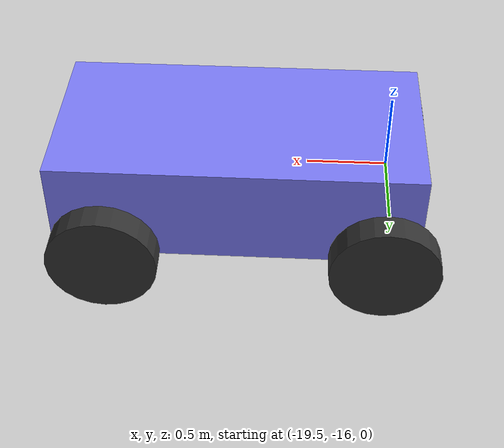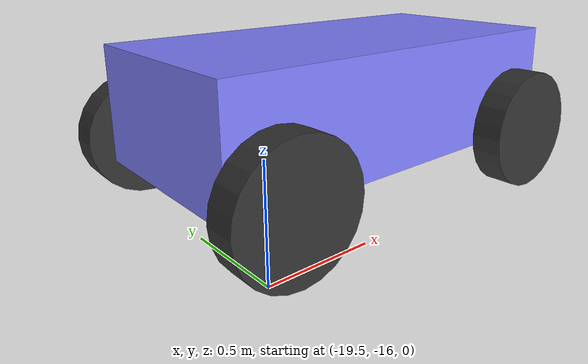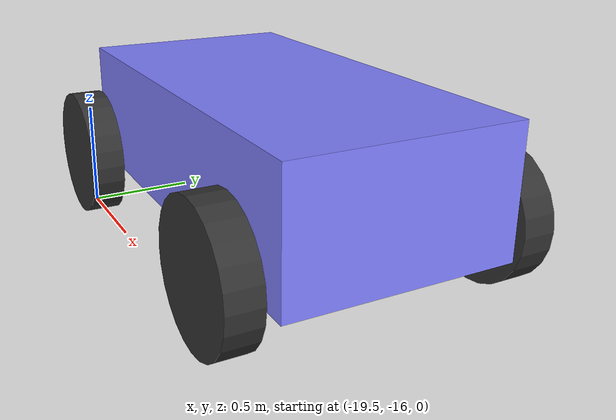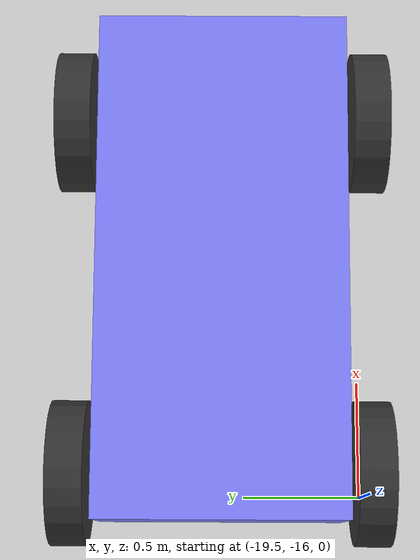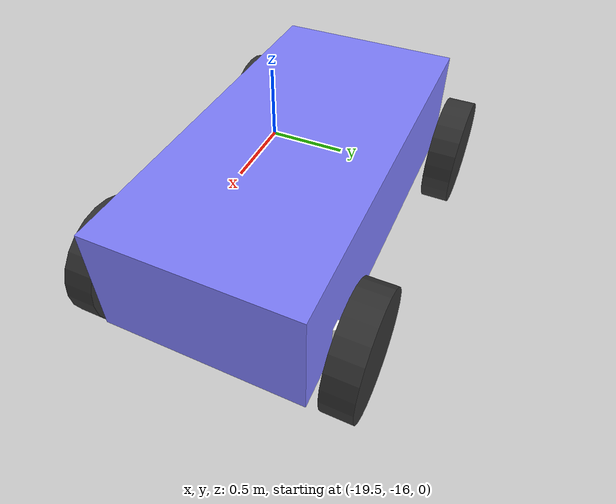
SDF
<sdf version="1.10">
 <world name="ackermann_steering">
  <model name="vehicle_blue">
   <pose>-18.453155517578125 -15.402700424194336 0.32499998807907104 0 0 0</pose>
   <link name="chassis">
    <pose>-0.15142700000000001 0 0.17499999999999999 0 0 0</pose>
    <inertial>
     <mass>1.14395</mass>
     <inertia>
      <ixx>0.126164</ixx>
      <ixy>0</ixy>
      <ixz>0</ixz>
      <iyy>0.41651899999999997</iyy>
      <iyz>0</iyz>
      <izz>0.481014</izz>
     </inertia>
    </inertial>
    <visual name="visual">
     <geometry><box><size>2.0114200000000002 1 0.56872599999999995</size></box></geometry>
     <material><ambient>0.5 0.5 1 1</ambient><diffuse>0.5 0.5 1 1</diffuse><specular>0 0 1 1</specular></material>
    </visual>
    <collision name="collision">
     <geometry><box><size>2.0114200000000002 1 0.56872599999999995</size></box></geometry>
    </collision>
    <sensor name="imu_sensor" type="imu">
     <topic>imu</topic>
     <update_rate>1</update_rate>
     <enable_metrics>false</enable_metrics>
     <imu>
      <orientation_reference_frame>
       <localization>CUSTOM</localization>
       <custom_rpy>0 0 0</custom_rpy>
       <grav_dir_x>1 0 0</grav_dir_x>
      </orientation_reference_frame>
      <angular_velocity>
       <x>
        <noise type="none">
         <mean>0</mean>
         <stddev>0</stddev>
         <bias_mean>0</bias_mean>
         <bias_stddev>0</bias_stddev>
         <dynamic_bias_stddev>0</dynamic_bias_stddev>
         <dynamic_bias_correlation_time>0</dynamic_bias_correlation_time>
         <precision>0</precision>
        </noise>
       </x>
       <y>
        <noise type="none">
         <mean>0</mean>
         <stddev>0</stddev>
         <bias_mean>0</bias_mean>
         <bias_stddev>0</bias_stddev>
         <dynamic_bias_stddev>0</dynamic_bias_stddev>
         <dynamic_bias_correlation_time>0</dynamic_bias_correlation_time>
         <precision>0</precision>
        </noise>
       </y>
       <z>
        <noise type="none">
         <mean>0</mean>
         <stddev>0</stddev>
         <bias_mean>0</bias_mean>
         <bias_stddev>0</bias_stddev>
         <dynamic_bias_stddev>0</dynamic_bias_stddev>
         <dynamic_bias_correlation_time>0</dynamic_bias_correlation_time>
         <precision>0</precision>
        </noise>
       </z>
      </angular_velocity>
      <linear_acceleration>
       <x>
        <noise type="none">
         <mean>0</mean>
         <stddev>0</stddev>
         <bias_mean>0</bias_mean>
         <bias_stddev>0</bias_stddev>
         <dynamic_bias_stddev>0</dynamic_bias_stddev>
         <dynamic_bias_correlation_time>0</dynamic_bias_correlation_time>
         <precision>0</precision>
        </noise>
       </x>
       <y>
        <noise type="none">
         <mean>0</mean>
         <stddev>0</stddev>
         <bias_mean>0</bias_mean>
         <bias_stddev>0</bias_stddev>
         <dynamic_bias_stddev>0</dynamic_bias_stddev>
         <dynamic_bias_correlation_time>0</dynamic_bias_correlation_time>
         <precision>0</precision>
        </noise>
       </y>
       <z>
        <noise type="none">
         <mean>0</mean>
         <stddev>0</stddev>
         <bias_mean>0</bias_mean>
         <bias_stddev>0</bias_stddev>
         <dynamic_bias_stddev>0</dynamic_bias_stddev>
         <dynamic_bias_correlation_time>0</dynamic_bias_correlation_time>
         <precision>0</precision>
        </noise>
       </z>
      </linear_acceleration>
      <enable_orientation>true</enable_orientation>
     </imu>
    </sensor>
    <sensor name="navsat_sensor" type="navsat"><always_on>true</always_on><update_rate>30</update_rate></sensor>
   </link>
   <link name="front_left_wheel">
    <pose>0.55428299999999808 0.62502899999999961 -0.025000000000000022 -1.5706999999999995 0 0</pose>
    <inertial>
     <mass>2</mass>
     <inertia>
      <ixx>0.14583299999999999</ixx>
      <ixy>0</ixy>
      <ixz>0</ixz>
      <iyy>0.14583299999999999</iyy>
      <iyz>0</iyz>
      <izz>0.125</izz>
     </inertia>
    </inertial>
    <visual name="visual">
     <geometry>
      <cylinder><length>0.14999999999999999</length><radius>0.29999999999999999</radius></cylinder>
     </geometry>
     <material>
      <ambient>0.200000003 0.200000003 0.200000003 1</ambient>
      <diffuse>0.200000003 0.200000003 0.200000003 1</diffuse>
      <specular>0.200000003 0.200000003 0.200000003 1</specular>
     </material>
    </visual>
    <collision name="collision">
     <geometry>
      <cylinder><length>0.14999999999999999</length><radius>0.29999999999999999</radius></cylinder>
     </geometry>
     <surface>
      <friction>
       <ode><mu>500</mu><mu2>1000</mu2><fdir1>0 0 1</fdir1></ode>
       <bullet><friction>200</friction><friction2>200</friction2><rolling_friction>100</rolling_friction></bullet>
      </friction>
     </surface>
    </collision>
   </link>
   <link name="rear_left_wheel">
    <pose>-0.95713800000000049 0.62502899999999961 -0.025000000000000022 -1.5706999999999995 0 0</pose>
    <inertial>
     <mass>2</mass>
     <inertia>
      <ixx>0.14583299999999999</ixx>
      <ixy>0</ixy>
      <ixz>0</ixz>
      <iyy>0.14583299999999999</iyy>
      <iyz>0</iyz>
      <izz>0.125</izz>
     </inertia>
    </inertial>
    <visual name="visual">
     <geometry>
      <cylinder><length>0.14999999999999999</length><radius>0.29999999999999999</radius></cylinder>
     </geometry>
     <material>
      <ambient>0.200000003 0.200000003 0.200000003 1</ambient>
      <diffuse>0.200000003 0.200000003 0.200000003 1</diffuse>
      <specular>0.200000003 0.200000003 0.200000003 1</specular>
     </material>
    </visual>
    <collision name="collision">
     <geometry>
      <cylinder><length>0.14999999999999999</length><radius>0.29999999999999999</radius></cylinder>
     </geometry>
     <surface>
      <friction>
       <ode><mu>500</mu><mu2>1000</mu2><fdir1>0 0 1</fdir1></ode>
       <bullet><friction>200</friction><friction2>200</friction2><rolling_friction>200</rolling_friction></bullet>
      </friction>
     </surface>
    </collision>
   </link>
   <link name="front_right_wheel">
    <pose>0.55428199999999705 -0.62502900000000139 -0.025000000000000022 -1.5706999999999995 0 0</pose>
    <inertial>
     <mass>2</mass>
     <inertia>
      <ixx>0.14583299999999999</ixx>
      <ixy>0</ixy>
      <ixz>0</ixz>
      <iyy>0.14583299999999999</iyy>
      <iyz>0</iyz>
      <izz>0.125</izz>
     </inertia>
    </inertial>
    <visual name="visual">
     <geometry>
      <cylinder><length>0.14999999999999999</length><radius>0.29999999999999999</radius></cylinder>
     </geometry>
     <material>
      <ambient>0.200000003 0.200000003 0.200000003 1</ambient>
      <diffuse>0.200000003 0.200000003 0.200000003 1</diffuse>
      <specular>0.200000003 0.200000003 0.200000003 1</specular>
     </material>
    </visual>
    <collision name="collision">
     <geometry>
      <cylinder><length>0.14999999999999999</length><radius>0.29999999999999999</radius></cylinder>
     </geometry>
     <surface>
      <friction>
       <ode><mu>500</mu><mu2>1000</mu2><fdir1>0 0 1</fdir1></ode>
       <bullet><friction>500</friction><friction2>1000</friction2><rolling_friction>100</rolling_friction></bullet>
      </friction>
     </surface>
    </collision>
   </link>
   <link name="rear_right_wheel">
    <pose>-0.95713800000000049 -0.62502900000000139 -0.025000000000000022 -1.5706999999999995 0 0</pose>
    <inertial>
     <mass>2</mass>
     <inertia>
      <ixx>0.14583299999999999</ixx>
      <ixy>0</ixy>
      <ixz>0</ixz>
      <iyy>0.14583299999999999</iyy>
      <iyz>0</iyz>
      <izz>0.125</izz>
     </inertia>
    </inertial>
    <visual name="visual">
     <geometry>
      <cylinder><length>0.14999999999999999</length><radius>0.29999999999999999</radius></cylinder>
     </geometry>
     <material>
      <ambient>0.200000003 0.200000003 0.200000003 1</ambient>
      <diffuse>0.200000003 0.200000003 0.200000003 1</diffuse>
      <specular>0.200000003 0.200000003 0.200000003 1</specular>
     </material>
    </visual>
    <collision name="collision">
     <geometry>
      <cylinder><length>0.14999999999999999</length><radius>0.29999999999999999</radius></cylinder>
     </geometry>
     <surface>
      <friction>
       <ode><mu>500</mu><mu2>1000</mu2><fdir1>0 0 1</fdir1></ode>
       <bullet><friction>500</friction><friction2>1000</friction2><rolling_friction>500</rolling_friction></bullet>
      </friction>
     </surface>
    </collision>
   </link>
   <link name="front_left_wheel_steering_link">
    <pose>0.55428299999999808 0.5 0.020000000000000018 0 0 0</pose>
    <inertial>
     <mass>0.5</mass>
     <inertia>
      <ixx>0.015299999999999999</ixx>
      <iyy>0.025000000000000001</iyy>
      <izz>0.015299999999999999</izz>
      <ixy>0</ixy>
      <ixz>0</ixz>
      <iyz>0</iyz>
     </inertia>
    </inertial>
    <visual name="steering_link_visual">
     <geometry>
      <cylinder><length>0.10000000000000001</length><radius>0.029999999999999999</radius></cylinder>
     </geometry>
     <material><ambient>1 1 1 1</ambient><diffuse>1 1 1 1</diffuse></material>
    </visual>
   </link>
   <link name="front_right_wheel_steering_link">
    <pose>0.55428299999999808 -0.5 0.020000000000000018 0 0 0</pose>
    <inertial>
     <mass>0.5</mass>
     <inertia>
      <ixx>0.015299999999999999</ixx>
      <iyy>0.025000000000000001</iyy>
      <izz>0.015299999999999999</izz>
      <ixy>0</ixy>
      <ixz>0</ixz>
      <iyz>0</iyz>
     </inertia>
    </inertial>
    <visual name="steering_link_visual">
     <geometry>
      <cylinder><length>0.10000000000000001</length><radius>0.029999999999999999</radius></cylinder>
     </geometry>
     <material><ambient>1 1 1 1</ambient><diffuse>1 1 1 1</diffuse></material>
    </visual>
   </link>
   <link name="camera_link">
    <pose>-1.0014200000000031 0.5 1.3687259999999999 0 0 0</pose>
    <sensor name="my_sensor" type="camera">
     <topic>camera</topic>
     <update_rate>30</update_rate>
     <enable_metrics>false</enable_metrics>
     <camera name="__default__">
      <horizontal_fov>1.0469999999999999</horizontal_fov>
      <image><width>320</width><height>240</height><format>RGB_INT8</format><anti_aliasing>4</anti_aliasing></image>
      <camera_info_topic>__default__</camera_info_topic>
      <triggered>false</triggered>
      <clip><near>0.10000000000000001</near><far>100</far></clip>
      <save enabled="false"><path>__default__</path></save>
      <visibility_mask>4294967295</visibility_mask>
      <noise><type>none</type><mean>0</mean><stddev>0</stddev></noise>
      <distortion><k1>0</k1><k2>0</k2><k3>0</k3><p1>0</p1><p2>0</p2><center>0.5 0.5</center></distortion>
      <lens>
       <type>stereographic</type>
       <scale_to_hfov>true</scale_to_hfov>
       <cutoff_angle>1.5707963267948966</cutoff_angle>
       <env_texture_size>256</env_texture_size>
      </lens>
     </camera>
    </sensor>
    <inertial>
     <mass>1</mass>
     <inertia><ixx>1</ixx><ixy>0</ixy><ixz>0</ixz><iyy>1</iyy><iyz>0</iyz><izz>1</izz></inertia>
    </inertial>
   </link>
   <joint name="camera_joint" type="fixed"><child>camera_link</child><parent>chassis</parent></joint>
   <link name="lidar_link">
    <pose>0.64857299999999896 0 0.67500000000000004 0 0 0</pose>
    <sensor name="gpu_lidar" type="gpu_lidar">
     <topic>lidar</topic>
     <update_rate>10</update_rate>
     <enable_metrics>false</enable_metrics>
     <lidar>
      <scan>
       <horizontal>
        <samples>640</samples>
        <resolution>1</resolution>
        <min_angle>-1.396263</min_angle>
        <max_angle>1.396263</max_angle>
       </horizontal>
       <vertical>
        <samples>1</samples>
        <min_angle>0</min_angle>
        <max_angle>0</max_angle>
        <resolution>0.01</resolution>
       </vertical>
      </scan>
      <range><min>0.080000000000000002</min><max>10</max><resolution>0.01</resolution></range>
      <noise><type>none</type><mean>0</mean><stddev>0</stddev></noise>
      <visibility_mask>4294967295</visibility_mask>
     </lidar>
    </sensor>
    <inertial>
     <mass>1</mass>
     <inertia><ixx>1</ixx><ixy>0</ixy><ixz>0</ixz><iyy>1</iyy><iyz>0</iyz><izz>1</izz></inertia>
    </inertial>
   </link>
   <joint name="lidar_joint" type="fixed"><child>lidar_link</child><parent>chassis</parent></joint>
   <joint name="front_left_wheel_steering_joint" type="revolute">
    <child>front_left_wheel_steering_link</child>
    <parent>chassis</parent>
    <axis>
     <xyz>0 0 1</xyz>
     <limit>
      <lower>-0.59999999999999998</lower>
      <upper>0.59999999999999998</upper>
      <effort>25</effort>
      <velocity>1</velocity>
      <stiffness>100000000</stiffness>
      <dissipation>1</dissipation>
     </limit>
     <dynamics>
      <spring_reference>0</spring_reference>
      <spring_stiffness>0</spring_stiffness>
      <damping>0</damping>
      <friction>0</friction>
     </dynamics>
    </axis>
   </joint>
   <joint name="front_right_wheel_steering_joint" type="revolute">
    <parent>chassis</parent>
    <child>front_right_wheel_steering_link</child>
    <axis>
     <xyz>0 0 1</xyz>
     <limit>
      <lower>-0.59999999999999998</lower>
      <upper>0.59999999999999998</upper>
      <effort>25</effort>
      <velocity>1</velocity>
      <stiffness>100000000</stiffness>
      <dissipation>1</dissipation>
     </limit>
     <dynamics>
      <spring_reference>0</spring_reference>
      <spring_stiffness>0</spring_stiffness>
      <damping>0</damping>
      <friction>0</friction>
     </dynamics>
    </axis>
   </joint>
   <joint name="front_left_wheel_joint" type="revolute">
    <parent>front_left_wheel_steering_link</parent>
    <child>front_left_wheel</child>
    <axis>
     <xyz>0 0 1</xyz>
     <limit>
      <lower>-1.7976900000000001e+308</lower>
      <upper>1.7976900000000001e+308</upper>
      <effort>inf</effort>
      <velocity>inf</velocity>
      <stiffness>100000000</stiffness>
      <dissipation>1</dissipation>
     </limit>
     <dynamics>
      <spring_reference>0</spring_reference>
      <spring_stiffness>0</spring_stiffness>
      <damping>0</damping>
      <friction>0</friction>
     </dynamics>
    </axis>
    <pose>0 -1.6653345369377348e-15 3.8857805861880479e-15 0 0 0</pose>
   </joint>
   <joint name="front_right_wheel_joint" type="revolute">
    <parent>front_right_wheel_steering_link</parent>
    <child>front_right_wheel</child>
    <axis>
     <xyz>0 0 1</xyz>
     <limit>
      <lower>-1.7976900000000001e+308</lower>
      <upper>1.7976900000000001e+308</upper>
      <effort>inf</effort>
      <velocity>inf</velocity>
      <stiffness>100000000</stiffness>
      <dissipation>1</dissipation>
     </limit>
     <dynamics>
      <spring_reference>0</spring_reference>
      <spring_stiffness>0</spring_stiffness>
      <damping>0</damping>
      <friction>0</friction>
     </dynamics>
    </axis>
    <pose>-1.1102230246251565e-16 2.3869795029440866e-15 -2.3314683517128287e-15 0 0 0</pose>
   </joint>
   <joint name="rear_left_wheel_joint" type="revolute">
    <parent>chassis</parent>
    <child>rear_left_wheel</child>
    <axis>
     <xyz>0 0 1</xyz>
     <limit>
      <lower>-1.7976900000000001e+308</lower>
      <upper>1.7976900000000001e+308</upper>
      <effort>inf</effort>
      <velocity>inf</velocity>
      <stiffness>100000000</stiffness>
      <dissipation>1</dissipation>
     </limit>
     <dynamics>
      <spring_reference>0</spring_reference>
      <spring_stiffness>0</spring_stiffness>
      <damping>0</damping>
      <friction>0</friction>
     </dynamics>
    </axis>
    <pose>0 -1.6653345369377348e-15 3.8857805861880479e-15 0 0 0</pose>
   </joint>
   <joint name="rear_right_wheel_joint" type="revolute">
    <parent>chassis</parent>
    <child>rear_right_wheel</child>
    <axis>
     <xyz>0 0 1</xyz>
     <limit>
      <lower>-1.7976900000000001e+308</lower>
      <upper>1.7976900000000001e+308</upper>
      <effort>inf</effort>
      <velocity>inf</velocity>
      <stiffness>100000000</stiffness>
      <dissipation>1</dissipation>
     </limit>
     <dynamics>
      <spring_reference>0</spring_reference>
      <spring_stiffness>0</spring_stiffness>
      <damping>0</damping>
      <friction>0</friction>
     </dynamics>
    </axis>
    <pose>0 2.3869795029440866e-15 -2.3314683517128287e-15 0 0 0</pose>
   </joint>
   <plugin name="gz::sim::systems::AckermannSteering" filename="gz-sim-ackermann-steering-system">
    <left_joint>front_left_wheel_joint</left_joint>
    <left_joint>rear_left_wheel_joint</left_joint>
    <right_joint>front_right_wheel_joint</right_joint>
    <right_joint>rear_right_wheel_joint</right_joint>
    <left_steering_joint>front_left_wheel_steering_joint</left_steering_joint>
    <right_steering_joint>front_right_wheel_steering_joint</right_steering_joint>
    <kingpin_width>1.0</kingpin_width>
    <steering_limit>2.0</steering_limit>
    <wheel_base>1.0</wheel_base>
    <wheel_separation>1.25</wheel_separation>
    <wheel_radius>0.3</wheel_radius>
    <min_velocity>-5</min_velocity>
    <max_velocity>5</max_velocity>
    <min_acceleration>-3</min_acceleration>
    <max_acceleration>3</max_acceleration>
   </plugin>
   <plugin name="gz::sim::systems::TriggeredPublisher" filename="gz-sim-triggered-publisher-system">
    <input type="gz.msgs.Int32" topic="/keyboard/keypress"><match field="data">16777235</match></input>
    <output type="gz.msgs.Twist" topic="/model/vehicle_blue/cmd_vel">linear: {x: 2.0}, angular: {z: 0.0}</output>
   </plugin>
   <plugin name="gz::sim::systems::TriggeredPublisher" filename="gz-sim-triggered-publisher-system">
    <input type="gz.msgs.Int32" topic="/keyboard/keypress"><match field="data">16777236</match></input>
    <output type="gz.msgs.Twist" topic="/model/vehicle_blue/cmd_vel">linear: {x: 2.0}, angular: {z: -1.0}</output>
   </plugin>
   <plugin name="gz::sim::systems::TriggeredPublisher" filename="gz-sim-triggered-publisher-system">
    <input type="gz.msgs.Int32" topic="/keyboard/keypress"><match field="data">16777234</match></input>
    <output type="gz.msgs.Twist" topic="/model/vehicle_blue/cmd_vel">linear: {x: 2.0}, angular: {z: 1.0}</output>
   </plugin>
   <plugin name="gz::sim::systems::TriggeredPublisher" filename="gz-sim-triggered-publisher-system">
    <input type="gz.msgs.Int32" topic="/keyboard/keypress"><match field="data">16777237</match></input>
    <output type="gz.msgs.Twist" topic="/model/vehicle_blue/cmd_vel">linear: {x: 0.0}, angular: {z: 0.0}</output>
   </plugin>
   <static>false</static>
  </model>
 </world>
</sdf>
